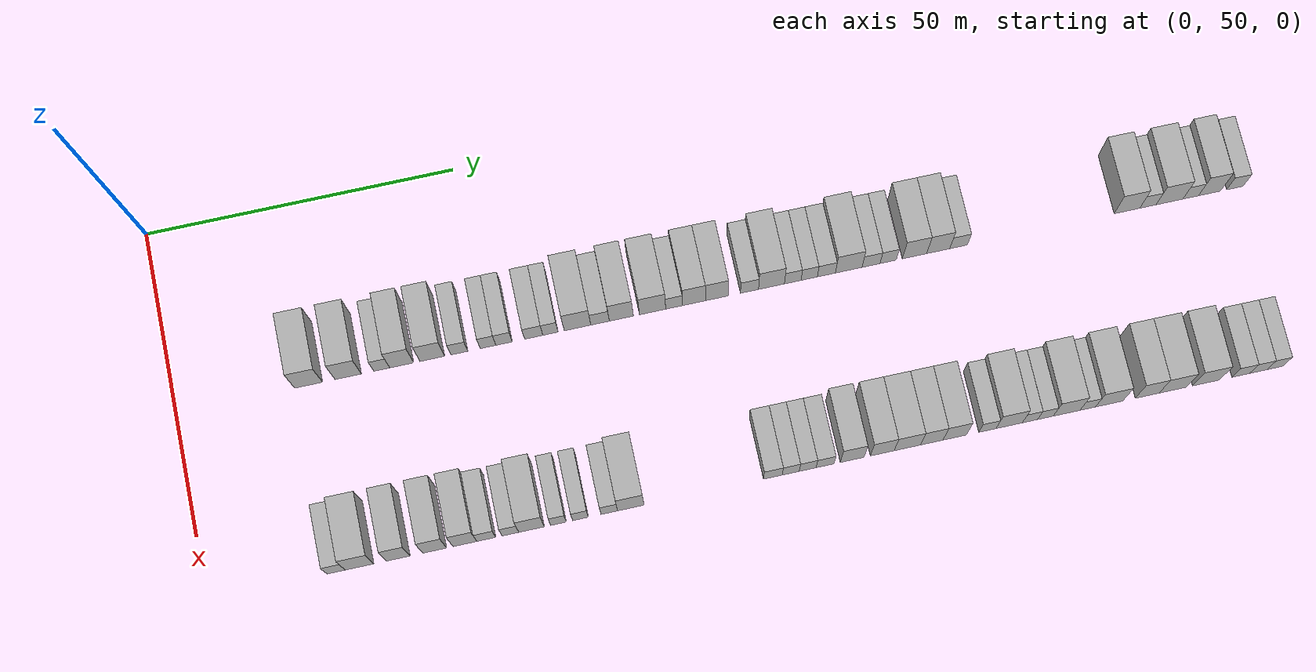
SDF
<sdf version="1.6">
 <world name="default">
  <model name="building_69">
   <static>1</static>
   <pose>25.0000 71.1309 0 0.000000 0.000000 0.000000</pose>
   <link name="link">
    <pose>0 0 4.50 0 0 0</pose>
    <collision name="collision"><geometry><box><size>10.0000 4.4374 9.0000</size></box></geometry></collision>
    <visual name="visual">
     <cast_shadows>0</cast_shadows>
     <geometry><box><size>10.0000 4.4374 9.0000</size></box></geometry>
     <material>
      <script>
       <uri>model://HANNAS_wall/materials/scripts</uri>
       <uri>model://HANNAS_wall/materials/textures</uri>
       <name>vrc/HANNAS_wall</name>
      </script>
     </material>
    </visual>
   </link>
  </model>
  <model name="building_70">
   <static>1</static>
   <pose>25.0000 77.4526 0 0.000000 0.000000 0.000000</pose>
   <link name="link">
    <pose>0 0 4.50 0 0 0</pose>
    <collision name="collision"><geometry><box><size>10.0000 4.2060 9.0000</size></box></geometry></collision>
    <visual name="visual">
     <cast_shadows>0</cast_shadows>
     <geometry><box><size>10.0000 4.2060 9.0000</size></box></geometry>
     <material>
      <script>
       <uri>model://HANNAS_wall/materials/scripts</uri>
       <uri>model://HANNAS_wall/materials/textures</uri>
       <name>vrc/HANNAS_wall</name>
      </script>
     </material>
    </visual>
   </link>
  </model>
  <model name="building_71">
   <static>1</static>
   <pose>25.0000 82.8267 0 0.000000 0.000000 0.000000</pose>
   <link name="link">
    <pose>0 0 3.00 0 0 0</pose>
    <collision name="collision"><geometry><box><size>10.0000 2.5423 6.0000</size></box></geometry></collision>
    <visual name="visual">
     <cast_shadows>0</cast_shadows>
     <geometry><box><size>10.0000 2.5423 6.0000</size></box></geometry>
     <material>
      <script>
       <uri>model://HANNAS_wall/materials/scripts</uri>
       <uri>model://HANNAS_wall/materials/textures</uri>
       <name>vrc/HANNAS_wall</name>
      </script>
     </material>
    </visual>
   </link>
  </model>
  <model name="building_72">
   <static>1</static>
   <pose>25.0000 86.0137 0 0.000000 0.000000 0.000000</pose>
   <link name="link">
    <pose>0 0 4.50 0 0 0</pose>
    <collision name="collision"><geometry><box><size>10.0000 3.8317 9.0000</size></box></geometry></collision>
    <visual name="visual">
     <cast_shadows>0</cast_shadows>
     <geometry><box><size>10.0000 3.8317 9.0000</size></box></geometry>
     <material>
      <script>
       <uri>model://HANNAS_wall/materials/scripts</uri>
       <uri>model://HANNAS_wall/materials/textures</uri>
       <name>vrc/HANNAS_wall</name>
      </script>
     </material>
    </visual>
   </link>
  </model>
  <model name="building_73">
   <static>1</static>
   <pose>25.0000 90.9118 0 0.000000 0.000000 0.000000</pose>
   <link name="link">
    <pose>0 0 4.50 0 0 0</pose>
    <collision name="collision"><geometry><box><size>10.0000 3.9644 9.0000</size></box></geometry></collision>
    <visual name="visual">
     <cast_shadows>0</cast_shadows>
     <geometry><box><size>10.0000 3.9644 9.0000</size></box></geometry>
     <material>
      <script>
       <uri>model://HANNAS_wall/materials/scripts</uri>
       <uri>model://HANNAS_wall/materials/textures</uri>
       <name>vrc/HANNAS_wall</name>
      </script>
     </material>
    </visual>
   </link>
  </model>
  <model name="building_74">
   <static>1</static>
   <pose>25.0000 95.2579 0 0.000000 0.000000 0.000000</pose>
   <link name="link">
    <pose>0 0 3.00 0 0 0</pose>
    <collision name="collision"><geometry><box><size>10.0000 2.7277 6.0000</size></box></geometry></collision>
    <visual name="visual">
     <cast_shadows>0</cast_shadows>
     <geometry><box><size>10.0000 2.7277 6.0000</size></box></geometry>
     <material>
      <script>
       <uri>model://HANNAS_wall/materials/scripts</uri>
       <uri>model://HANNAS_wall/materials/textures</uri>
       <name>vrc/HANNAS_wall</name>
      </script>
     </material>
    </visual>
   </link>
  </model>
  <model name="building_75">
   <static>1</static>
   <pose>25.0000 99.8744 0 0.000000 0.000000 0.000000</pose>
   <link name="link">
    <pose>0 0 3.00 0 0 0</pose>
    <collision name="collision"><geometry><box><size>10.0000 2.5054 6.0000</size></box></geometry></collision>
    <visual name="visual">
     <cast_shadows>0</cast_shadows>
     <geometry><box><size>10.0000 2.5054 6.0000</size></box></geometry>
     <material>
      <script>
       <uri>model://HANNAS_wall/materials/scripts</uri>
       <uri>model://HANNAS_wall/materials/textures</uri>
       <name>vrc/HANNAS_wall</name>
      </script>
     </material>
    </visual>
   </link>
  </model>
  <model name="building_76">
   <static>1</static>
   <pose>25.0000 102.4407 0 0.000000 0.000000 0.000000</pose>
   <link name="link">
    <pose>0 0 3.00 0 0 0</pose>
    <collision name="collision"><geometry><box><size>10.0000 2.6271 6.0000</size></box></geometry></collision>
    <visual name="visual">
     <cast_shadows>0</cast_shadows>
     <geometry><box><size>10.0000 2.6271 6.0000</size></box></geometry>
     <material>
      <script>
       <uri>model://HANNAS_wall/materials/scripts</uri>
       <uri>model://HANNAS_wall/materials/textures</uri>
       <name>vrc/HANNAS_wall</name>
      </script>
     </material>
    </visual>
   </link>
  </model>
  <model name="building_77">
   <static>1</static>
   <pose>25.0000 107.2240 0 0.000000 0.000000 0.000000</pose>
   <link name="link">
    <pose>0 0 3.00 0 0 0</pose>
    <collision name="collision"><geometry><box><size>10.0000 2.9394 6.0000</size></box></geometry></collision>
    <visual name="visual">
     <cast_shadows>0</cast_shadows>
     <geometry><box><size>10.0000 2.9394 6.0000</size></box></geometry>
     <material>
      <script>
       <uri>model://HANNAS_wall/materials/scripts</uri>
       <uri>model://HANNAS_wall/materials/textures</uri>
       <name>vrc/HANNAS_wall</name>
      </script>
     </material>
    </visual>
   </link>
  </model>
  <model name="building_78">
   <static>1</static>
   <pose>25.0000 109.9187 0 0.000000 0.000000 0.000000</pose>
   <link name="link">
    <pose>0 0 3.00 0 0 0</pose>
    <collision name="collision"><geometry><box><size>10.0000 2.4499 6.0000</size></box></geometry></collision>
    <visual name="visual">
     <cast_shadows>0</cast_shadows>
     <geometry><box><size>10.0000 2.4499 6.0000</size></box></geometry>
     <material>
      <script>
       <uri>model://HANNAS_wall/materials/scripts</uri>
       <uri>model://HANNAS_wall/materials/textures</uri>
       <name>vrc/HANNAS_wall</name>
      </script>
     </material>
    </visual>
   </link>
  </model>
  <model name="building_79">
   <static>1</static>
   <pose>25.0000 114.2880 0 0.000000 0.000000 0.000000</pose>
   <link name="link">
    <pose>0 0 4.50 0 0 0</pose>
    <collision name="collision"><geometry><box><size>10.0000 4.2888 9.0000</size></box></geometry></collision>
    <visual name="visual">
     <cast_shadows>0</cast_shadows>
     <geometry><box><size>10.0000 4.2888 9.0000</size></box></geometry>
     <material>
      <script>
       <uri>model://HANNAS_wall/materials/scripts</uri>
       <uri>model://HANNAS_wall/materials/textures</uri>
       <name>vrc/HANNAS_wall</name>
      </script>
     </material>
    </visual>
   </link>
  </model>
  <model name="building_80">
   <static>1</static>
   <pose>25.0000 117.9234 0 0.000000 0.000000 0.000000</pose>
   <link name="link">
    <pose>0 0 3.00 0 0 0</pose>
    <collision name="collision"><geometry><box><size>10.0000 2.9819 6.0000</size></box></geometry></collision>
    <visual name="visual">
     <cast_shadows>0</cast_shadows>
     <geometry><box><size>10.0000 2.9819 6.0000</size></box></geometry>
     <material>
      <script>
       <uri>model://HANNAS_wall/materials/scripts</uri>
       <uri>model://HANNAS_wall/materials/textures</uri>
       <name>vrc/HANNAS_wall</name>
      </script>
     </material>
    </visual>
   </link>
  </model>
  <model name="building_81">
   <static>1</static>
   <pose>25.0000 121.3598 0 0.000000 0.000000 0.000000</pose>
   <link name="link">
    <pose>0 0 4.50 0 0 0</pose>
    <collision name="collision"><geometry><box><size>10.0000 3.8908 9.0000</size></box></geometry></collision>
    <visual name="visual">
     <cast_shadows>0</cast_shadows>
     <geometry><box><size>10.0000 3.8908 9.0000</size></box></geometry>
     <material>
      <script>
       <uri>model://HANNAS_wall/materials/scripts</uri>
       <uri>model://HANNAS_wall/materials/textures</uri>
       <name>vrc/HANNAS_wall</name>
      </script>
     </material>
    </visual>
   </link>
  </model>
  <model name="building_82">
   <static>1</static>
   <pose>25.0000 126.4308 0 0.000000 0.000000 0.000000</pose>
   <link name="link">
    <pose>0 0 4.50 0 0 0</pose>
    <collision name="collision"><geometry><box><size>10.0000 4.2512 9.0000</size></box></geometry></collision>
    <visual name="visual">
     <cast_shadows>0</cast_shadows>
     <geometry><box><size>10.0000 4.2512 9.0000</size></box></geometry>
     <material>
      <script>
       <uri>model://HANNAS_wall/materials/scripts</uri>
       <uri>model://HANNAS_wall/materials/textures</uri>
       <name>vrc/HANNAS_wall</name>
      </script>
     </material>
    </visual>
   </link>
  </model>
  <model name="building_83">
   <static>1</static>
   <pose>25.0000 129.9223 0 0.000000 0.000000 0.000000</pose>
   <link name="link">
    <pose>0 0 3.00 0 0 0</pose>
    <collision name="collision"><geometry><box><size>10.0000 2.7317 6.0000</size></box></geometry></collision>
    <visual name="visual">
     <cast_shadows>0</cast_shadows>
     <geometry><box><size>10.0000 2.7317 6.0000</size></box></geometry>
     <material>
      <script>
       <uri>model://HANNAS_wall/materials/scripts</uri>
       <uri>model://HANNAS_wall/materials/textures</uri>
       <name>vrc/HANNAS_wall</name>
      </script>
     </material>
    </visual>
   </link>
  </model>
  <model name="building_84">
   <static>1</static>
   <pose>25.0000 133.1480 0 0.000000 0.000000 0.000000</pose>
   <link name="link">
    <pose>0 0 4.50 0 0 0</pose>
    <collision name="collision"><geometry><box><size>10.0000 3.7199 9.0000</size></box></geometry></collision>
    <visual name="visual">
     <cast_shadows>0</cast_shadows>
     <geometry><box><size>10.0000 3.7199 9.0000</size></box></geometry>
     <material>
      <script>
       <uri>model://HANNAS_wall/materials/scripts</uri>
       <uri>model://HANNAS_wall/materials/textures</uri>
       <name>vrc/HANNAS_wall</name>
      </script>
     </material>
    </visual>
   </link>
  </model>
  <model name="building_85">
   <static>1</static>
   <pose>25.0000 136.8513 0 0.000000 0.000000 0.000000</pose>
   <link name="link">
    <pose>0 0 4.50 0 0 0</pose>
    <collision name="collision"><geometry><box><size>10.0000 3.6866 9.0000</size></box></geometry></collision>
    <visual name="visual">
     <cast_shadows>0</cast_shadows>
     <geometry><box><size>10.0000 3.6866 9.0000</size></box></geometry>
     <material>
      <script>
       <uri>model://HANNAS_wall/materials/scripts</uri>
       <uri>model://HANNAS_wall/materials/textures</uri>
       <name>vrc/HANNAS_wall</name>
      </script>
     </material>
    </visual>
   </link>
  </model>
  <model name="building_86">
   <static>1</static>
   <pose>25.0000 142.1601 0 0.000000 0.000000 0.000000</pose>
   <link name="link">
    <pose>0 0 3.00 0 0 0</pose>
    <collision name="collision"><geometry><box><size>10.0000 2.9312 6.0000</size></box></geometry></collision>
    <visual name="visual">
     <cast_shadows>0</cast_shadows>
     <geometry><box><size>10.0000 2.9312 6.0000</size></box></geometry>
     <material>
      <script>
       <uri>model://HANNAS_wall/materials/scripts</uri>
       <uri>model://HANNAS_wall/materials/textures</uri>
       <name>vrc/HANNAS_wall</name>
      </script>
     </material>
    </visual>
   </link>
  </model>
  <model name="building_87">
   <static>1</static>
   <pose>25.0000 145.7357 0 0.000000 0.000000 0.000000</pose>
   <link name="link">
    <pose>0 0 4.50 0 0 0</pose>
    <collision name="collision"><geometry><box><size>10.0000 4.2200 9.0000</size></box></geometry></collision>
    <visual name="visual">
     <cast_shadows>0</cast_shadows>
     <geometry><box><size>10.0000 4.2200 9.0000</size></box></geometry>
     <material>
      <script>
       <uri>model://HANNAS_wall/materials/scripts</uri>
       <uri>model://HANNAS_wall/materials/textures</uri>
       <name>vrc/HANNAS_wall</name>
      </script>
     </material>
    </visual>
   </link>
  </model>
  <model name="building_88">
   <static>1</static>
   <pose>25.0000 149.2051 0 0.000000 0.000000 0.000000</pose>
   <link name="link">
    <pose>0 0 3.00 0 0 0</pose>
    <collision name="collision"><geometry><box><size>10.0000 2.7187 6.0000</size></box></geometry></collision>
    <visual name="visual">
     <cast_shadows>0</cast_shadows>
     <geometry><box><size>10.0000 2.7187 6.0000</size></box></geometry>
     <material>
      <script>
       <uri>model://HANNAS_wall/materials/scripts</uri>
       <uri>model://HANNAS_wall/materials/textures</uri>
       <name>vrc/HANNAS_wall</name>
      </script>
     </material>
    </visual>
   </link>
  </model>
  <model name="building_89">
   <static>1</static>
   <pose>25.0000 151.8957 0 0.000000 0.000000 0.000000</pose>
   <link name="link">
    <pose>0 0 3.00 0 0 0</pose>
    <collision name="collision"><geometry><box><size>10.0000 2.6626 6.0000</size></box></geometry></collision>
    <visual name="visual">
     <cast_shadows>0</cast_shadows>
     <geometry><box><size>10.0000 2.6626 6.0000</size></box></geometry>
     <material>
      <script>
       <uri>model://HANNAS_wall/materials/scripts</uri>
       <uri>model://HANNAS_wall/materials/textures</uri>
       <name>vrc/HANNAS_wall</name>
      </script>
     </material>
    </visual>
   </link>
  </model>
  <model name="building_90">
   <static>1</static>
   <pose>25.0000 154.6971 0 0.000000 0.000000 0.000000</pose>
   <link name="link">
    <pose>0 0 3.00 0 0 0</pose>
    <collision name="collision"><geometry><box><size>10.0000 2.9401 6.0000</size></box></geometry></collision>
    <visual name="visual">
     <cast_shadows>0</cast_shadows>
     <geometry><box><size>10.0000 2.9401 6.0000</size></box></geometry>
     <material>
      <script>
       <uri>model://HANNAS_wall/materials/scripts</uri>
       <uri>model://HANNAS_wall/materials/textures</uri>
       <name>vrc/HANNAS_wall</name>
      </script>
     </material>
    </visual>
   </link>
  </model>
  <model name="building_91">
   <static>1</static>
   <pose>25.0000 158.3461 0 0.000000 0.000000 0.000000</pose>
   <link name="link">
    <pose>0 0 4.50 0 0 0</pose>
    <collision name="collision"><geometry><box><size>10.0000 4.3579 9.0000</size></box></geometry></collision>
    <visual name="visual">
     <cast_shadows>0</cast_shadows>
     <geometry><box><size>10.0000 4.3579 9.0000</size></box></geometry>
     <material>
      <script>
       <uri>model://HANNAS_wall/materials/scripts</uri>
       <uri>model://HANNAS_wall/materials/textures</uri>
       <name>vrc/HANNAS_wall</name>
      </script>
     </material>
    </visual>
   </link>
  </model>
  <model name="building_92">
   <static>1</static>
   <pose>25.0000 162.0051 0 0.000000 0.000000 0.000000</pose>
   <link name="link">
    <pose>0 0 3.00 0 0 0</pose>
    <collision name="collision"><geometry><box><size>10.0000 2.9601 6.0000</size></box></geometry></collision>
    <visual name="visual">
     <cast_shadows>0</cast_shadows>
     <geometry><box><size>10.0000 2.9601 6.0000</size></box></geometry>
     <material>
      <script>
       <uri>model://HANNAS_wall/materials/scripts</uri>
       <uri>model://HANNAS_wall/materials/textures</uri>
       <name>vrc/HANNAS_wall</name>
      </script>
     </material>
    </visual>
   </link>
  </model>
  <model name="building_93">
   <static>1</static>
   <pose>25.0000 164.8165 0 0.000000 0.000000 0.000000</pose>
   <link name="link">
    <pose>0 0 3.00 0 0 0</pose>
    <collision name="collision"><geometry><box><size>10.0000 2.6629 6.0000</size></box></geometry></collision>
    <visual name="visual">
     <cast_shadows>0</cast_shadows>
     <geometry><box><size>10.0000 2.6629 6.0000</size></box></geometry>
     <material>
      <script>
       <uri>model://HANNAS_wall/materials/scripts</uri>
       <uri>model://HANNAS_wall/materials/textures</uri>
       <name>vrc/HANNAS_wall</name>
      </script>
     </material>
    </visual>
   </link>
  </model>
  <model name="building_94">
   <static>1</static>
   <pose>25.0000 169.1477 0 0.000000 0.000000 0.000000</pose>
   <link name="link">
    <pose>0 0 4.50 0 0 0</pose>
    <collision name="collision"><geometry><box><size>10.0000 3.9995 9.0000</size></box></geometry></collision>
    <visual name="visual">
     <cast_shadows>0</cast_shadows>
     <geometry><box><size>10.0000 3.9995 9.0000</size></box></geometry>
     <material>
      <script>
       <uri>model://HANNAS_wall/materials/scripts</uri>
       <uri>model://HANNAS_wall/materials/textures</uri>
       <name>vrc/HANNAS_wall</name>
      </script>
     </material>
    </visual>
   </link>
  </model>
  <model name="building_95">
   <static>1</static>
   <pose>25.0000 173.0362 0 0.000000 0.000000 0.000000</pose>
   <link name="link">
    <pose>0 0 4.50 0 0 0</pose>
    <collision name="collision"><geometry><box><size>10.0000 3.7775 9.0000</size></box></geometry></collision>
    <visual name="visual">
     <cast_shadows>0</cast_shadows>
     <geometry><box><size>10.0000 3.7775 9.0000</size></box></geometry>
     <material>
      <script>
       <uri>model://HANNAS_wall/materials/scripts</uri>
       <uri>model://HANNAS_wall/materials/textures</uri>
       <name>vrc/HANNAS_wall</name>
      </script>
     </material>
    </visual>
   </link>
  </model>
  <model name="building_96">
   <static>1</static>
   <pose>25.0000 176.3784 0 0.000000 0.000000 0.000000</pose>
   <link name="link">
    <pose>0 0 3.00 0 0 0</pose>
    <collision name="collision"><geometry><box><size>10.0000 2.9069 6.0000</size></box></geometry></collision>
    <visual name="visual">
     <cast_shadows>0</cast_shadows>
     <geometry><box><size>10.0000 2.9069 6.0000</size></box></geometry>
     <material>
      <script>
       <uri>model://HANNAS_wall/materials/scripts</uri>
       <uri>model://HANNAS_wall/materials/textures</uri>
       <name>vrc/HANNAS_wall</name>
      </script>
     </material>
    </visual>
   </link>
  </model>
  <model name="building_97">
   <static>1</static>
   <pose>25.0000 204.2120 0 0.000000 0.000000 0.000000</pose>
   <link name="link">
    <pose>0 0 4.50 0 0 0</pose>
    <collision name="collision"><geometry><box><size>10.0000 4.2535 9.0000</size></box></geometry></collision>
    <visual name="visual">
     <cast_shadows>0</cast_shadows>
     <geometry><box><size>10.0000 4.2535 9.0000</size></box></geometry>
     <material>
      <script>
       <uri>model://HANNAS_wall/materials/scripts</uri>
       <uri>model://HANNAS_wall/materials/textures</uri>
       <name>vrc/HANNAS_wall</name>
      </script>
     </material>
    </visual>
   </link>
  </model>
  <model name="building_98">
   <static>1</static>
   <pose>25.0000 207.6969 0 0.000000 0.000000 0.000000</pose>
   <link name="link">
    <pose>0 0 3.00 0 0 0</pose>
    <collision name="collision"><geometry><box><size>10.0000 2.7163 6.0000</size></box></geometry></collision>
    <visual name="visual">
     <cast_shadows>0</cast_shadows>
     <geometry><box><size>10.0000 2.7163 6.0000</size></box></geometry>
     <material>
      <script>
       <uri>model://HANNAS_wall/materials/scripts</uri>
       <uri>model://HANNAS_wall/materials/textures</uri>
       <name>vrc/HANNAS_wall</name>
      </script>
     </material>
    </visual>
   </link>
  </model>
  <model name="building_99">
   <static>1</static>
   <pose>25.0000 211.2784 0 0.000000 0.000000 0.000000</pose>
   <link name="link">
    <pose>0 0 4.50 0 0 0</pose>
    <collision name="collision"><geometry><box><size>10.0000 4.4467 9.0000</size></box></geometry></collision>
    <visual name="visual">
     <cast_shadows>0</cast_shadows>
     <geometry><box><size>10.0000 4.4467 9.0000</size></box></geometry>
     <material>
      <script>
       <uri>model://HANNAS_wall/materials/scripts</uri>
       <uri>model://HANNAS_wall/materials/textures</uri>
       <name>vrc/HANNAS_wall</name>
      </script>
     </material>
    </visual>
   </link>
  </model>
  <model name="building_100">
   <static>1</static>
   <pose>25.0000 214.7898 0 0.000000 0.000000 0.000000</pose>
   <link name="link">
    <pose>0 0 3.00 0 0 0</pose>
    <collision name="collision"><geometry><box><size>10.0000 2.5761 6.0000</size></box></geometry></collision>
    <visual name="visual">
     <cast_shadows>0</cast_shadows>
     <geometry><box><size>10.0000 2.5761 6.0000</size></box></geometry>
     <material>
      <script>
       <uri>model://HANNAS_wall/materials/scripts</uri>
       <uri>model://HANNAS_wall/materials/textures</uri>
       <name>vrc/HANNAS_wall</name>
      </script>
     </material>
    </visual>
   </link>
  </model>
  <model name="building_101">
   <static>1</static>
   <pose>25.0000 217.9299 0 0.000000 0.000000 0.000000</pose>
   <link name="link">
    <pose>0 0 4.50 0 0 0</pose>
    <collision name="collision"><geometry><box><size>10.0000 3.7041 9.0000</size></box></geometry></collision>
    <visual name="visual">
     <cast_shadows>0</cast_shadows>
     <geometry><box><size>10.0000 3.7041 9.0000</size></box></geometry>
     <material>
      <script>
       <uri>model://HANNAS_wall/materials/scripts</uri>
       <uri>model://HANNAS_wall/materials/textures</uri>
       <name>vrc/HANNAS_wall</name>
      </script>
     </material>
    </visual>
   </link>
  </model>
  <model name="building_102">
   <static>1</static>
   <pose>25.0000 222.1586 0 0.000000 0.000000 0.000000</pose>
   <link name="link">
    <pose>0 0 3.00 0 0 0</pose>
    <collision name="collision"><geometry><box><size>10.0000 2.7534 6.0000</size></box></geometry></collision>
    <visual name="visual">
     <cast_shadows>0</cast_shadows>
     <geometry><box><size>10.0000 2.7534 6.0000</size></box></geometry>
     <material>
      <script>
       <uri>model://HANNAS_wall/materials/scripts</uri>
       <uri>model://HANNAS_wall/materials/textures</uri>
       <name>vrc/HANNAS_wall</name>
      </script>
     </material>
    </visual>
   </link>
  </model>
  <model name="building_171">
   <static>1</static>
   <pose>55.0000 70.1867 0 0.000000 0.000000 0.000000</pose>
   <link name="link">
    <pose>0 0 3.00 0 0 0</pose>
    <collision name="collision"><geometry><box><size>10.0000 2.8637 6.0000</size></box></geometry></collision>
    <visual name="visual">
     <cast_shadows>0</cast_shadows>
     <geometry><box><size>10.0000 2.8637 6.0000</size></box></geometry>
     <material>
      <script>
       <uri>model://HANNAS_wall/materials/scripts</uri>
       <uri>model://HANNAS_wall/materials/textures</uri>
       <name>vrc/HANNAS_wall</name>
      </script>
     </material>
    </visual>
   </link>
  </model>
  <model name="building_172">
   <static>1</static>
   <pose>55.0000 73.8488 0 0.000000 0.000000 0.000000</pose>
   <link name="link">
    <pose>0 0 4.50 0 0 0</pose>
    <collision name="collision"><geometry><box><size>10.0000 4.4605 9.0000</size></box></geometry></collision>
    <visual name="visual">
     <cast_shadows>0</cast_shadows>
     <geometry><box><size>10.0000 4.4605 9.0000</size></box></geometry>
     <material>
      <script>
       <uri>model://HANNAS_wall/materials/scripts</uri>
       <uri>model://HANNAS_wall/materials/textures</uri>
       <name>vrc/HANNAS_wall</name>
      </script>
     </material>
    </visual>
   </link>
  </model>
  <model name="building_173">
   <static>1</static>
   <pose>55.0000 79.9200 0 0.000000 0.000000 0.000000</pose>
   <link name="link">
    <pose>0 0 4.50 0 0 0</pose>
    <collision name="collision"><geometry><box><size>10.0000 3.6818 9.0000</size></box></geometry></collision>
    <visual name="visual">
     <cast_shadows>0</cast_shadows>
     <geometry><box><size>10.0000 3.6818 9.0000</size></box></geometry>
     <material>
      <script>
       <uri>model://HANNAS_wall/materials/scripts</uri>
       <uri>model://HANNAS_wall/materials/textures</uri>
       <name>vrc/HANNAS_wall</name>
      </script>
     </material>
    </visual>
   </link>
  </model>
  <model name="building_174">
   <static>1</static>
   <pose>55.0000 85.6311 0 0.000000 0.000000 0.000000</pose>
   <link name="link">
    <pose>0 0 4.50 0 0 0</pose>
    <collision name="collision"><geometry><box><size>10.0000 3.7404 9.0000</size></box></geometry></collision>
    <visual name="visual">
     <cast_shadows>0</cast_shadows>
     <geometry><box><size>10.0000 3.7404 9.0000</size></box></geometry>
     <material>
      <script>
       <uri>model://HANNAS_wall/materials/scripts</uri>
       <uri>model://HANNAS_wall/materials/textures</uri>
       <name>vrc/HANNAS_wall</name>
      </script>
     </material>
    </visual>
   </link>
  </model>
  <model name="building_175">
   <static>1</static>
   <pose>55.0000 90.3769 0 0.000000 0.000000 0.000000</pose>
   <link name="link">
    <pose>0 0 4.50 0 0 0</pose>
    <collision name="collision"><geometry><box><size>10.0000 3.7511 9.0000</size></box></geometry></collision>
    <visual name="visual">
     <cast_shadows>0</cast_shadows>
     <geometry><box><size>10.0000 3.7511 9.0000</size></box></geometry>
     <material>
      <script>
       <uri>model://HANNAS_wall/materials/scripts</uri>
       <uri>model://HANNAS_wall/materials/textures</uri>
       <name>vrc/HANNAS_wall</name>
      </script>
     </material>
    </visual>
   </link>
  </model>
  <model name="building_176">
   <static>1</static>
   <pose>55.0000 93.7414 0 0.000000 0.000000 0.000000</pose>
   <link name="link">
    <pose>0 0 3.00 0 0 0</pose>
    <collision name="collision"><geometry><box><size>10.0000 2.9779 6.0000</size></box></geometry></collision>
    <visual name="visual">
     <cast_shadows>0</cast_shadows>
     <geometry><box><size>10.0000 2.9779 6.0000</size></box></geometry>
     <material>
      <script>
       <uri>model://HANNAS_wall/materials/scripts</uri>
       <uri>model://HANNAS_wall/materials/textures</uri>
       <name>vrc/HANNAS_wall</name>
      </script>
     </material>
    </visual>
   </link>
  </model>
  <model name="building_177">
   <static>1</static>
   <pose>55.0000 97.5488 0 0.000000 0.000000 0.000000</pose>
   <link name="link">
    <pose>0 0 3.00 0 0 0</pose>
    <collision name="collision"><geometry><box><size>10.0000 2.6370 6.0000</size></box></geometry></collision>
    <visual name="visual">
     <cast_shadows>0</cast_shadows>
     <geometry><box><size>10.0000 2.6370 6.0000</size></box></geometry>
     <material>
      <script>
       <uri>model://HANNAS_wall/materials/scripts</uri>
       <uri>model://HANNAS_wall/materials/textures</uri>
       <name>vrc/HANNAS_wall</name>
      </script>
     </material>
    </visual>
   </link>
  </model>
  <model name="building_178">
   <static>1</static>
   <pose>55.0000 100.8824 0 0.000000 0.000000 0.000000</pose>
   <link name="link">
    <pose>0 0 4.50 0 0 0</pose>
    <collision name="collision"><geometry><box><size>10.0000 4.0303 9.0000</size></box></geometry></collision>
    <visual name="visual">
     <cast_shadows>0</cast_shadows>
     <geometry><box><size>10.0000 4.0303 9.0000</size></box></geometry>
     <material>
      <script>
       <uri>model://HANNAS_wall/materials/scripts</uri>
       <uri>model://HANNAS_wall/materials/textures</uri>
       <name>vrc/HANNAS_wall</name>
      </script>
     </material>
    </visual>
   </link>
  </model>
  <model name="building_179">
   <static>1</static>
   <pose>55.0000 105.1302 0 0.000000 0.000000 0.000000</pose>
   <link name="link">
    <pose>0 0 3.00 0 0 0</pose>
    <collision name="collision"><geometry><box><size>10.0000 2.4652 6.0000</size></box></geometry></collision>
    <visual name="visual">
     <cast_shadows>0</cast_shadows>
     <geometry><box><size>10.0000 2.4652 6.0000</size></box></geometry>
     <material>
      <script>
       <uri>model://HANNAS_wall/materials/scripts</uri>
       <uri>model://HANNAS_wall/materials/textures</uri>
       <name>vrc/HANNAS_wall</name>
      </script>
     </material>
    </visual>
   </link>
  </model>
  <model name="building_180">
   <static>1</static>
   <pose>55.0000 108.6047 0 0.000000 0.000000 0.000000</pose>
   <link name="link">
    <pose>0 0 3.00 0 0 0</pose>
    <collision name="collision"><geometry><box><size>10.0000 2.4838 6.0000</size></box></geometry></collision>
    <visual name="visual">
     <cast_shadows>0</cast_shadows>
     <geometry><box><size>10.0000 2.4838 6.0000</size></box></geometry>
     <material>
      <script>
       <uri>model://HANNAS_wall/materials/scripts</uri>
       <uri>model://HANNAS_wall/materials/textures</uri>
       <name>vrc/HANNAS_wall</name>
      </script>
     </material>
    </visual>
   </link>
  </model>
  <model name="building_181">
   <static>1</static>
   <pose>55.0000 113.1565 0 0.000000 0.000000 0.000000</pose>
   <link name="link">
    <pose>0 0 3.00 0 0 0</pose>
    <collision name="collision"><geometry><box><size>10.0000 2.6197 6.0000</size></box></geometry></collision>
    <visual name="visual">
     <cast_shadows>0</cast_shadows>
     <geometry><box><size>10.0000 2.6197 6.0000</size></box></geometry>
     <material>
      <script>
       <uri>model://HANNAS_wall/materials/scripts</uri>
       <uri>model://HANNAS_wall/materials/textures</uri>
       <name>vrc/HANNAS_wall</name>
      </script>
     </material>
    </visual>
   </link>
  </model>
  <model name="building_182">
   <static>1</static>
   <pose>55.0000 116.5625 0 0.000000 0.000000 0.000000</pose>
   <link name="link">
    <pose>0 0 4.50 0 0 0</pose>
    <collision name="collision"><geometry><box><size>10.0000 4.1923 9.0000</size></box></geometry></collision>
    <visual name="visual">
     <cast_shadows>0</cast_shadows>
     <geometry><box><size>10.0000 4.1923 9.0000</size></box></geometry>
     <material>
      <script>
       <uri>model://HANNAS_wall/materials/scripts</uri>
       <uri>model://HANNAS_wall/materials/textures</uri>
       <name>vrc/HANNAS_wall</name>
      </script>
     </material>
    </visual>
   </link>
  </model>
  <model name="building_183">
   <static>1</static>
   <pose>55.0000 139.1529 0 0.000000 0.000000 0.000000</pose>
   <link name="link">
    <pose>0 0 3.00 0 0 0</pose>
    <collision name="collision"><geometry><box><size>10.0000 2.9962 6.0000</size></box></geometry></collision>
    <visual name="visual">
     <cast_shadows>0</cast_shadows>
     <geometry><box><size>10.0000 2.9962 6.0000</size></box></geometry>
     <material>
      <script>
       <uri>model://HANNAS_wall/materials/scripts</uri>
       <uri>model://HANNAS_wall/materials/textures</uri>
       <name>vrc/HANNAS_wall</name>
      </script>
     </material>
    </visual>
   </link>
  </model>
  <model name="building_184">
   <static>1</static>
   <pose>55.0000 142.0051 0 0.000000 0.000000 0.000000</pose>
   <link name="link">
    <pose>0 0 3.00 0 0 0</pose>
    <collision name="collision"><geometry><box><size>10.0000 2.7082 6.0000</size></box></geometry></collision>
    <visual name="visual">
     <cast_shadows>0</cast_shadows>
     <geometry><box><size>10.0000 2.7082 6.0000</size></box></geometry>
     <material>
      <script>
       <uri>model://HANNAS_wall/materials/scripts</uri>
       <uri>model://HANNAS_wall/materials/textures</uri>
       <name>vrc/HANNAS_wall</name>
      </script>
     </material>
    </visual>
   </link>
  </model>
  <model name="building_185">
   <static>1</static>
   <pose>55.0000 144.7057 0 0.000000 0.000000 0.000000</pose>
   <link name="link">
    <pose>0 0 3.00 0 0 0</pose>
    <collision name="collision"><geometry><box><size>10.0000 2.6929 6.0000</size></box></geometry></collision>
    <visual name="visual">
     <cast_shadows>0</cast_shadows>
     <geometry><box><size>10.0000 2.6929 6.0000</size></box></geometry>
     <material>
      <script>
       <uri>model://HANNAS_wall/materials/scripts</uri>
       <uri>model://HANNAS_wall/materials/textures</uri>
       <name>vrc/HANNAS_wall</name>
      </script>
     </material>
    </visual>
   </link>
  </model>
  <model name="building_186">
   <static>1</static>
   <pose>55.0000 147.4935 0 0.000000 0.000000 0.000000</pose>
   <link name="link">
    <pose>0 0 3.00 0 0 0</pose>
    <collision name="collision"><geometry><box><size>10.0000 2.8828 6.0000</size></box></geometry></collision>
    <visual name="visual">
     <cast_shadows>0</cast_shadows>
     <geometry><box><size>10.0000 2.8828 6.0000</size></box></geometry>
     <material>
      <script>
       <uri>model://HANNAS_wall/materials/scripts</uri>
       <uri>model://HANNAS_wall/materials/textures</uri>
       <name>vrc/HANNAS_wall</name>
      </script>
     </material>
    </visual>
   </link>
  </model>
  <model name="building_187">
   <static>1</static>
   <pose>55.0000 151.8379 0 0.000000 0.000000 0.000000</pose>
   <link name="link">
    <pose>0 0 4.50 0 0 0</pose>
    <collision name="collision"><geometry><box><size>10.0000 3.8060 9.0000</size></box></geometry></collision>
    <visual name="visual">
     <cast_shadows>0</cast_shadows>
     <geometry><box><size>10.0000 3.8060 9.0000</size></box></geometry>
     <material>
      <script>
       <uri>model://HANNAS_wall/materials/scripts</uri>
       <uri>model://HANNAS_wall/materials/textures</uri>
       <name>vrc/HANNAS_wall</name>
      </script>
     </material>
    </visual>
   </link>
  </model>
  <model name="building_188">
   <static>1</static>
   <pose>55.0000 156.6544 0 0.000000 0.000000 0.000000</pose>
   <link name="link">
    <pose>0 0 4.50 0 0 0</pose>
    <collision name="collision"><geometry><box><size>10.0000 3.8270 9.0000</size></box></geometry></collision>
    <visual name="visual">
     <cast_shadows>0</cast_shadows>
     <geometry><box><size>10.0000 3.8270 9.0000</size></box></geometry>
     <material>
      <script>
       <uri>model://HANNAS_wall/materials/scripts</uri>
       <uri>model://HANNAS_wall/materials/textures</uri>
       <name>vrc/HANNAS_wall</name>
      </script>
     </material>
    </visual>
   </link>
  </model>
  <model name="building_189">
   <static>1</static>
   <pose>55.0000 160.6828 0 0.000000 0.000000 0.000000</pose>
   <link name="link">
    <pose>0 0 4.50 0 0 0</pose>
    <collision name="collision"><geometry><box><size>10.0000 4.2298 9.0000</size></box></geometry></collision>
    <visual name="visual">
     <cast_shadows>0</cast_shadows>
     <geometry><box><size>10.0000 4.2298 9.0000</size></box></geometry>
     <material>
      <script>
       <uri>model://HANNAS_wall/materials/scripts</uri>
       <uri>model://HANNAS_wall/materials/textures</uri>
       <name>vrc/HANNAS_wall</name>
      </script>
     </material>
    </visual>
   </link>
  </model>
  <model name="building_190">
   <static>1</static>
   <pose>55.0000 164.6088 0 0.000000 0.000000 0.000000</pose>
   <link name="link">
    <pose>0 0 4.50 0 0 0</pose>
    <collision name="collision"><geometry><box><size>10.0000 3.6224 9.0000</size></box></geometry></collision>
    <visual name="visual">
     <cast_shadows>0</cast_shadows>
     <geometry><box><size>10.0000 3.6224 9.0000</size></box></geometry>
     <material>
      <script>
       <uri>model://HANNAS_wall/materials/scripts</uri>
       <uri>model://HANNAS_wall/materials/textures</uri>
       <name>vrc/HANNAS_wall</name>
      </script>
     </material>
    </visual>
   </link>
  </model>
  <model name="building_191">
   <static>1</static>
   <pose>55.0000 168.3051 0 0.000000 0.000000 0.000000</pose>
   <link name="link">
    <pose>0 0 4.50 0 0 0</pose>
    <collision name="collision"><geometry><box><size>10.0000 3.7701 9.0000</size></box></geometry></collision>
    <visual name="visual">
     <cast_shadows>0</cast_shadows>
     <geometry><box><size>10.0000 3.7701 9.0000</size></box></geometry>
     <material>
      <script>
       <uri>model://HANNAS_wall/materials/scripts</uri>
       <uri>model://HANNAS_wall/materials/textures</uri>
       <name>vrc/HANNAS_wall</name>
      </script>
     </material>
    </visual>
   </link>
  </model>
  <model name="building_192">
   <static>1</static>
   <pose>55.0000 173.5659 0 0.000000 0.000000 0.000000</pose>
   <link name="link">
    <pose>0 0 3.00 0 0 0</pose>
    <collision name="collision"><geometry><box><size>10.0000 2.7516 6.0000</size></box></geometry></collision>
    <visual name="visual">
     <cast_shadows>0</cast_shadows>
     <geometry><box><size>10.0000 2.7516 6.0000</size></box></geometry>
     <material>
      <script>
       <uri>model://HANNAS_wall/materials/scripts</uri>
       <uri>model://HANNAS_wall/materials/textures</uri>
       <name>vrc/HANNAS_wall</name>
      </script>
     </material>
    </visual>
   </link>
  </model>
  <model name="building_193">
   <static>1</static>
   <pose>55.0000 177.0713 0 0.000000 0.000000 0.000000</pose>
   <link name="link">
    <pose>0 0 4.50 0 0 0</pose>
    <collision name="collision"><geometry><box><size>10.0000 4.2593 9.0000</size></box></geometry></collision>
    <visual name="visual">
     <cast_shadows>0</cast_shadows>
     <geometry><box><size>10.0000 4.2593 9.0000</size></box></geometry>
     <material>
      <script>
       <uri>model://HANNAS_wall/materials/scripts</uri>
       <uri>model://HANNAS_wall/materials/textures</uri>
       <name>vrc/HANNAS_wall</name>
      </script>
     </material>
    </visual>
   </link>
  </model>
  <model name="building_194">
   <static>1</static>
   <pose>55.0000 180.4372 0 0.000000 0.000000 0.000000</pose>
   <link name="link">
    <pose>0 0 3.00 0 0 0</pose>
    <collision name="collision"><geometry><box><size>10.0000 2.4726 6.0000</size></box></geometry></collision>
    <visual name="visual">
     <cast_shadows>0</cast_shadows>
     <geometry><box><size>10.0000 2.4726 6.0000</size></box></geometry>
     <material>
      <script>
       <uri>model://HANNAS_wall/materials/scripts</uri>
       <uri>model://HANNAS_wall/materials/textures</uri>
       <name>vrc/HANNAS_wall</name>
      </script>
     </material>
    </visual>
   </link>
  </model>
  <model name="building_195">
   <static>1</static>
   <pose>55.0000 182.9326 0 0.000000 0.000000 0.000000</pose>
   <link name="link">
    <pose>0 0 3.00 0 0 0</pose>
    <collision name="collision"><geometry><box><size>10.0000 2.5181 6.0000</size></box></geometry></collision>
    <visual name="visual">
     <cast_shadows>0</cast_shadows>
     <geometry><box><size>10.0000 2.5181 6.0000</size></box></geometry>
     <material>
      <script>
       <uri>model://HANNAS_wall/materials/scripts</uri>
       <uri>model://HANNAS_wall/materials/textures</uri>
       <name>vrc/HANNAS_wall</name>
      </script>
     </material>
    </visual>
   </link>
  </model>
  <model name="building_196">
   <static>1</static>
   <pose>55.0000 186.3680 0 0.000000 0.000000 0.000000</pose>
   <link name="link">
    <pose>0 0 4.50 0 0 0</pose>
    <collision name="collision"><geometry><box><size>10.0000 4.3526 9.0000</size></box></geometry></collision>
    <visual name="visual">
     <cast_shadows>0</cast_shadows>
     <geometry><box><size>10.0000 4.3526 9.0000</size></box></geometry>
     <material>
      <script>
       <uri>model://HANNAS_wall/materials/scripts</uri>
       <uri>model://HANNAS_wall/materials/textures</uri>
       <name>vrc/HANNAS_wall</name>
      </script>
     </material>
    </visual>
   </link>
  </model>
  <model name="building_197">
   <static>1</static>
   <pose>55.0000 189.7969 0 0.000000 0.000000 0.000000</pose>
   <link name="link">
    <pose>0 0 3.00 0 0 0</pose>
    <collision name="collision"><geometry><box><size>10.0000 2.5052 6.0000</size></box></geometry></collision>
    <visual name="visual">
     <cast_shadows>0</cast_shadows>
     <geometry><box><size>10.0000 2.5052 6.0000</size></box></geometry>
     <material>
      <script>
       <uri>model://HANNAS_wall/materials/scripts</uri>
       <uri>model://HANNAS_wall/materials/textures</uri>
       <name>vrc/HANNAS_wall</name>
      </script>
     </material>
    </visual>
   </link>
  </model>
  <model name="building_198">
   <static>1</static>
   <pose>55.0000 193.2811 0 0.000000 0.000000 0.000000</pose>
   <link name="link">
    <pose>0 0 4.50 0 0 0</pose>
    <collision name="collision"><geometry><box><size>10.0000 4.4632 9.0000</size></box></geometry></collision>
    <visual name="visual">
     <cast_shadows>0</cast_shadows>
     <geometry><box><size>10.0000 4.4632 9.0000</size></box></geometry>
     <material>
      <script>
       <uri>model://HANNAS_wall/materials/scripts</uri>
       <uri>model://HANNAS_wall/materials/textures</uri>
       <name>vrc/HANNAS_wall</name>
      </script>
     </material>
    </visual>
   </link>
  </model>
  <model name="building_199">
   <static>1</static>
   <pose>55.0000 199.4529 0 0.000000 0.000000 0.000000</pose>
   <link name="link">
    <pose>0 0 4.50 0 0 0</pose>
    <collision name="collision"><geometry><box><size>10.0000 3.8803 9.0000</size></box></geometry></collision>
    <visual name="visual">
     <cast_shadows>0</cast_shadows>
     <geometry><box><size>10.0000 3.8803 9.0000</size></box></geometry>
     <material>
      <script>
       <uri>model://HANNAS_wall/materials/scripts</uri>
       <uri>model://HANNAS_wall/materials/textures</uri>
       <name>vrc/HANNAS_wall</name>
      </script>
     </material>
    </visual>
   </link>
  </model>
  <model name="building_200">
   <static>1</static>
   <pose>55.0000 203.6141 0 0.000000 0.000000 0.000000</pose>
   <link name="link">
    <pose>0 0 4.50 0 0 0</pose>
    <collision name="collision"><geometry><box><size>10.0000 4.4421 9.0000</size></box></geometry></collision>
    <visual name="visual">
     <cast_shadows>0</cast_shadows>
     <geometry><box><size>10.0000 4.4421 9.0000</size></box></geometry>
     <material>
      <script>
       <uri>model://HANNAS_wall/materials/scripts</uri>
       <uri>model://HANNAS_wall/materials/textures</uri>
       <name>vrc/HANNAS_wall</name>
      </script>
     </material>
    </visual>
   </link>
  </model>
  <model name="building_201">
   <static>1</static>
   <pose>55.0000 209.0374 0 0.000000 0.000000 0.000000</pose>
   <link name="link">
    <pose>0 0 4.50 0 0 0</pose>
    <collision name="collision"><geometry><box><size>10.0000 4.4045 9.0000</size></box></geometry></collision>
    <visual name="visual">
     <cast_shadows>0</cast_shadows>
     <geometry><box><size>10.0000 4.4045 9.0000</size></box></geometry>
     <material>
      <script>
       <uri>model://HANNAS_wall/materials/scripts</uri>
       <uri>model://HANNAS_wall/materials/textures</uri>
       <name>vrc/HANNAS_wall</name>
      </script>
     </material>
    </visual>
   </link>
  </model>
  <model name="building_202">
   <static>1</static>
   <pose>55.0000 214.6982 0 0.000000 0.000000 0.000000</pose>
   <link name="link">
    <pose>0 0 3.00 0 0 0</pose>
    <collision name="collision"><geometry><box><size>10.0000 2.9171 6.0000</size></box></geometry></collision>
    <visual name="visual">
     <cast_shadows>0</cast_shadows>
     <geometry><box><size>10.0000 2.9171 6.0000</size></box></geometry>
     <material>
      <script>
       <uri>model://HANNAS_wall/materials/scripts</uri>
       <uri>model://HANNAS_wall/materials/textures</uri>
       <name>vrc/HANNAS_wall</name>
      </script>
     </material>
    </visual>
   </link>
  </model>
  <model name="building_203">
   <static>1</static>
   <pose>55.0000 217.5673 0 0.000000 0.000000 0.000000</pose>
   <link name="link">
    <pose>0 0 3.00 0 0 0</pose>
    <collision name="collision"><geometry><box><size>10.0000 2.8211 6.0000</size></box></geometry></collision>
    <visual name="visual">
     <cast_shadows>0</cast_shadows>
     <geometry><box><size>10.0000 2.8211 6.0000</size></box></geometry>
     <material>
      <script>
       <uri>model://HANNAS_wall/materials/scripts</uri>
       <uri>model://HANNAS_wall/materials/textures</uri>
       <name>vrc/HANNAS_wall</name>
      </script>
     </material>
    </visual>
   </link>
  </model>
  <model name="building_204">
   <static>1</static>
   <pose>55.0000 220.2713 0 0.000000 0.000000 0.000000</pose>
   <link name="link">
    <pose>0 0 3.00 0 0 0</pose>
    <collision name="collision"><geometry><box><size>10.0000 2.5870 6.0000</size></box></geometry></collision>
    <visual name="visual">
     <cast_shadows>0</cast_shadows>
     <geometry><box><size>10.0000 2.5870 6.0000</size></box></geometry>
     <material>
      <script>
       <uri>model://HANNAS_wall/materials/scripts</uri>
       <uri>model://HANNAS_wall/materials/textures</uri>
       <name>vrc/HANNAS_wall</name>
      </script>
     </material>
    </visual>
   </link>
  </model>
 </world>
</sdf>
